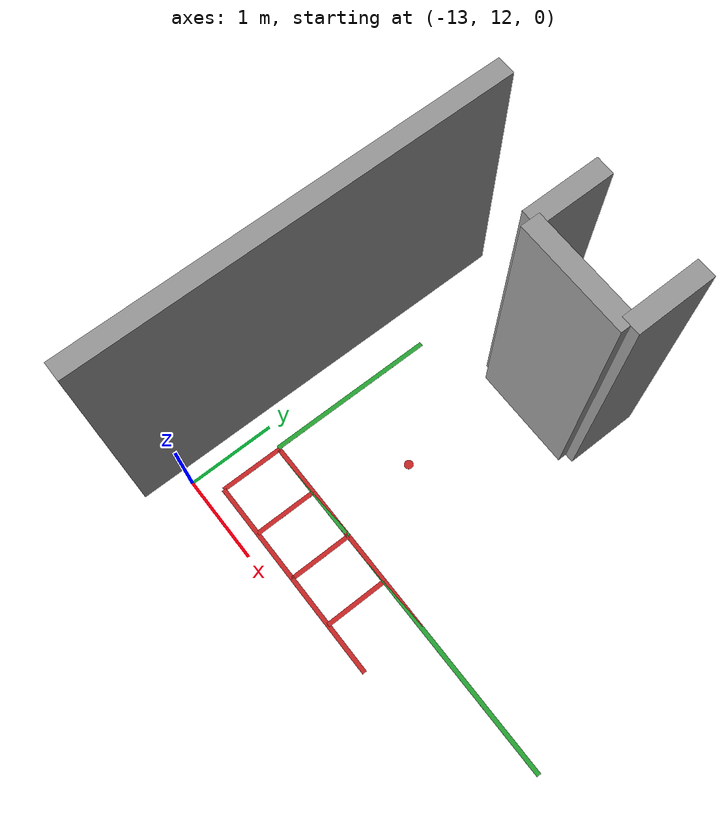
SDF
<sdf version="1.6">
 <world name="square_world">
  <model name="wall6">
   <static>1</static>
   <pose>-13.28 13.8125 1.6 0 0 -1.5708</pose>
   <link name="wall_link">
    <inertial><mass>10000</mass></inertial>
    <collision name="wall_collision">
     <geometry><box><size>4.575 0.2 3.2</size></box></geometry>
     <surface><contact><collide_bitmask>2</collide_bitmask></contact></surface>
    </collision>
    <visual name="wall_visual">
     <geometry><box><size>4.575 0.2 3.2</size></box></geometry>
     <material><script><name>Gazebo/Grey</name><uri>__default__</uri></script></material>
    </visual>
   </link>
  </model>
  <model name="wall36">
   <static>1</static>
   <pose>-10.82 15.69 1.6 0 0 -1.5708</pose>
   <link name="wall_link">
    <inertial><mass>10000</mass></inertial>
    <collision name="wall_collision">
     <geometry><box><size>0.82 0.2 3.2</size></box></geometry>
     <surface><contact><collide_bitmask>2</collide_bitmask></contact></surface>
    </collision>
    <visual name="wall_visual">
     <geometry><box><size>0.82 0.2 3.2</size></box></geometry>
     <material><script><name>Gazebo/Grey</name><uri>__default__</uri></script></material>
    </visual>
   </link>
  </model>
  <model name="wall37">
   <static>1</static>
   <pose>-12.02 15.69 1.6 0 0 -1.5708</pose>
   <link name="wall_link">
    <inertial><mass>10000</mass></inertial>
    <collision name="wall_collision">
     <geometry><box><size>0.82 0.2 3.2</size></box></geometry>
     <surface><contact><collide_bitmask>2</collide_bitmask></contact></surface>
    </collision>
    <visual name="wall_visual">
     <geometry><box><size>0.82 0.2 3.2</size></box></geometry>
     <material><script><name>Gazebo/Grey</name><uri>__default__</uri></script></material>
    </visual>
   </link>
  </model>
  <model name="wall38">
   <static>1</static>
   <pose>-11.42 15.28 1.6 0 -0 0</pose>
   <link name="wall_link">
    <inertial><mass>10000</mass></inertial>
    <collision name="wall_collision">
     <geometry><box><size>1.2 0.2 3.2</size></box></geometry>
     <surface><contact><collide_bitmask>2</collide_bitmask></contact></surface>
    </collision>
    <visual name="wall_visual">
     <geometry><box><size>1.2 0.2 3.2</size></box></geometry>
     <material><script><name>Gazebo/Grey</name><uri>__default__</uri></script></material>
    </visual>
   </link>
  </model>
  <model name="wall548">
   <static>1</static>
   <pose>-10.595 12.935 0 0 -0 0</pose>
   <link name="wall_link">
    <inertial><mass>10000</mass></inertial>
    <collision name="wall_collision">
     <geometry><box><size>4.11 0.05 0.001</size></box></geometry>
     <surface><contact><collide_bitmask>2</collide_bitmask></contact></surface>
    </collision>
    <visual name="wall_visual">
     <geometry><box><size>4.11 0.05 0.001</size></box></geometry>
     <material><script><name>Gazebo/Green</name><uri>__default__</uri></script></material>
    </visual>
   </link>
  </model>
  <model name="wall558">
   <static>1</static>
   <pose>-12.76 13.9075 0 0 0 -1.5708</pose>
   <link name="wall_link">
    <inertial><mass>10000</mass></inertial>
    <collision name="wall_collision">
     <geometry><box><size>1.945 0.05 0.001</size></box></geometry>
     <surface><contact><collide_bitmask>2</collide_bitmask></contact></surface>
    </collision>
    <visual name="wall_visual">
     <geometry><box><size>1.945 0.05 0.001</size></box></geometry>
     <material><script><name>Gazebo/Green</name><uri>__default__</uri></script></material>
    </visual>
   </link>
  </model>
  <model name="wall858">
   <static>1</static>
   <pose>-10.94 12.575 0 0 0 -1.5708</pose>
   <link name="wall_link">
    <inertial><mass>10000</mass></inertial>
    <collision name="wall_collision">
     <geometry><box><size>0.72 0.05 0.001</size></box></geometry>
     <surface><contact><collide_bitmask>2</collide_bitmask></contact></surface>
    </collision>
    <visual name="wall_visual">
     <geometry><box><size>0.72 0.05 0.001</size></box></geometry>
     <material><script><name>Gazebo/Red</name><uri>__default__</uri></script></material>
    </visual>
   </link>
  </model>
  <model name="wall868">
   <static>1</static>
   <pose>-10.64 12.215 0 0 -0 0</pose>
   <link name="wall_link">
    <inertial><mass>10000</mass></inertial>
    <collision name="wall_collision">
     <geometry><box><size>0.6 0.05 0.001</size></box></geometry>
     <surface><contact><collide_bitmask>2</collide_bitmask></contact></surface>
    </collision>
    <visual name="wall_visual">
     <geometry><box><size>0.6 0.05 0.001</size></box></geometry>
     <material><script><name>Gazebo/Red</name><uri>__default__</uri></script></material>
    </visual>
   </link>
  </model>
  <model name="wall878">
   <static>1</static>
   <pose>-10.64 12.935 0 0 -0 0</pose>
   <link name="wall_link">
    <inertial><mass>10000</mass></inertial>
    <collision name="wall_collision">
     <geometry><box><size>0.6 0.05 0.001</size></box></geometry>
     <surface><contact><collide_bitmask>2</collide_bitmask></contact></surface>
    </collision>
    <visual name="wall_visual">
     <geometry><box><size>0.6 0.05 0.001</size></box></geometry>
     <material><script><name>Gazebo/Red</name><uri>__default__</uri></script></material>
    </visual>
   </link>
  </model>
  <model name="wall898">
   <static>1</static>
   <pose>-11.54 12.575 0 0 0 -1.5708</pose>
   <link name="wall_link">
    <inertial><mass>10000</mass></inertial>
    <collision name="wall_collision">
     <geometry><box><size>0.72 0.05 0.001</size></box></geometry>
     <surface><contact><collide_bitmask>2</collide_bitmask></contact></surface>
    </collision>
    <visual name="wall_visual">
     <geometry><box><size>0.72 0.05 0.001</size></box></geometry>
     <material><script><name>Gazebo/Red</name><uri>__default__</uri></script></material>
    </visual>
   </link>
  </model>
  <model name="wall908">
   <static>1</static>
   <pose>-11.24 12.215 0 0 -0 0</pose>
   <link name="wall_link">
    <inertial><mass>10000</mass></inertial>
    <collision name="wall_collision">
     <geometry><box><size>0.6 0.05 0.001</size></box></geometry>
     <surface><contact><collide_bitmask>2</collide_bitmask></contact></surface>
    </collision>
    <visual name="wall_visual">
     <geometry><box><size>0.6 0.05 0.001</size></box></geometry>
     <material><script><name>Gazebo/Red</name><uri>__default__</uri></script></material>
    </visual>
   </link>
  </model>
  <model name="wall918">
   <static>1</static>
   <pose>-11.24 12.935 0 0 -0 0</pose>
   <link name="wall_link">
    <inertial><mass>10000</mass></inertial>
    <collision name="wall_collision">
     <geometry><box><size>0.6 0.05 0.001</size></box></geometry>
     <surface><contact><collide_bitmask>2</collide_bitmask></contact></surface>
    </collision>
    <visual name="wall_visual">
     <geometry><box><size>0.6 0.05 0.001</size></box></geometry>
     <material><script><name>Gazebo/Red</name><uri>__default__</uri></script></material>
    </visual>
   </link>
  </model>
  <model name="wall928">
   <static>1</static>
   <pose>-12.14 12.575 0 0 0 -1.5708</pose>
   <link name="wall_link">
    <inertial><mass>10000</mass></inertial>
    <collision name="wall_collision">
     <geometry><box><size>0.72 0.05 0.001</size></box></geometry>
     <surface><contact><collide_bitmask>2</collide_bitmask></contact></surface>
    </collision>
    <visual name="wall_visual">
     <geometry><box><size>0.72 0.05 0.001</size></box></geometry>
     <material><script><name>Gazebo/Red</name><uri>__default__</uri></script></material>
    </visual>
   </link>
  </model>
  <model name="wall938">
   <static>1</static>
   <pose>-11.84 12.215 0 0 -0 0</pose>
   <link name="wall_link">
    <inertial><mass>10000</mass></inertial>
    <collision name="wall_collision">
     <geometry><box><size>0.6 0.05 0.001</size></box></geometry>
     <surface><contact><collide_bitmask>2</collide_bitmask></contact></surface>
    </collision>
    <visual name="wall_visual">
     <geometry><box><size>0.6 0.05 0.001</size></box></geometry>
     <material><script><name>Gazebo/Red</name><uri>__default__</uri></script></material>
    </visual>
   </link>
  </model>
  <model name="wall948">
   <static>1</static>
   <pose>-11.84 12.935 0 0 -0 0</pose>
   <link name="wall_link">
    <inertial><mass>10000</mass></inertial>
    <collision name="wall_collision">
     <geometry><box><size>0.6 0.05 0.001</size></box></geometry>
     <surface><contact><collide_bitmask>2</collide_bitmask></contact></surface>
    </collision>
    <visual name="wall_visual">
     <geometry><box><size>0.6 0.05 0.001</size></box></geometry>
     <material><script><name>Gazebo/Red</name><uri>__default__</uri></script></material>
    </visual>
   </link>
  </model>
  <model name="wall958">
   <static>1</static>
   <pose>-12.74 12.575 0 0 0 -1.5708</pose>
   <link name="wall_link">
    <inertial><mass>10000</mass></inertial>
    <collision name="wall_collision">
     <geometry><box><size>0.72 0.05 0.001</size></box></geometry>
     <surface><contact><collide_bitmask>2</collide_bitmask></contact></surface>
    </collision>
    <visual name="wall_visual">
     <geometry><box><size>0.72 0.05 0.001</size></box></geometry>
     <material><script><name>Gazebo/Red</name><uri>__default__</uri></script></material>
    </visual>
   </link>
  </model>
  <model name="wall968">
   <static>1</static>
   <pose>-12.44 12.215 0 0 -0 0</pose>
   <link name="wall_link">
    <inertial><mass>10000</mass></inertial>
    <collision name="wall_collision">
     <geometry><box><size>0.6 0.05 0.001</size></box></geometry>
     <surface><contact><collide_bitmask>2</collide_bitmask></contact></surface>
    </collision>
    <visual name="wall_visual">
     <geometry><box><size>0.6 0.05 0.001</size></box></geometry>
     <material><script><name>Gazebo/Red</name><uri>__default__</uri></script></material>
    </visual>
   </link>
  </model>
  <model name="wall978">
   <static>1</static>
   <pose>-12.44 12.935 0 0 -0 0</pose>
   <link name="wall_link">
    <inertial><mass>10000</mass></inertial>
    <collision name="wall_collision">
     <geometry><box><size>0.6 0.05 0.001</size></box></geometry>
     <surface><contact><collide_bitmask>2</collide_bitmask></contact></surface>
    </collision>
    <visual name="wall_visual">
     <geometry><box><size>0.6 0.05 0.001</size></box></geometry>
     <material><script><name>Gazebo/Red</name><uri>__default__</uri></script></material>
    </visual>
   </link>
  </model>
  <model name="wall1308">
   <static>1</static>
   <pose>-11.76 13.9075 0 0 0 -1.5708</pose>
   <link name="wall_link">
    <inertial><mass>10000</mass></inertial>
    <collision name="wall_collision">
     <geometry><cylinder><radius>0.05</radius><length>0.001</length></cylinder></geometry>
     <surface><contact><collide_bitmask>2</collide_bitmask></contact></surface>
    </collision>
    <visual name="wall_visual">
     <geometry><cylinder><radius>0.05</radius><length>0.001</length></cylinder></geometry>
     <material><script><name>Gazebo/Red</name><uri>__default__</uri></script></material>
    </visual>
   </link>
  </model>
 </world>
</sdf>
